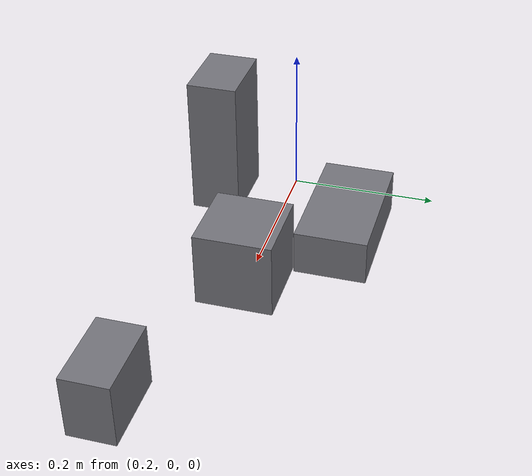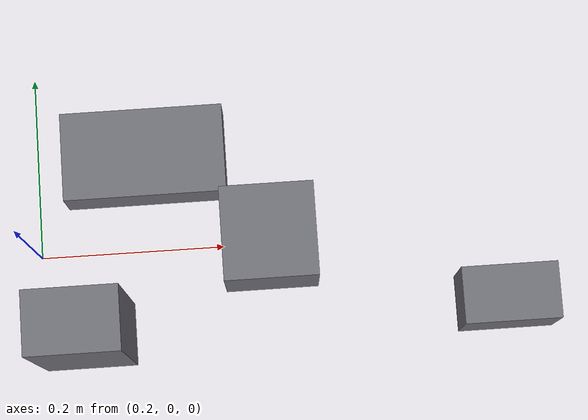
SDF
<?xml version="1.0"?>
<sdf version="1.7">
  <model name="oim_ycb_clutter"><static>true</static>
    <link name="obs_box">
      <pose>0.44999999999999996 0.0 0.05 0 0 0</pose>
      <collision name="collision"><geometry><box><size>0.1 0.1 0.1</size></box></geometry>
        <surface><friction><ode><mu>0.8</mu><mu2>0.8</mu2></ode></friction></surface>
      </collision>
      <visual name="visual"><geometry><box><size>0.1 0.1 0.1</size></box></geometry>
        <material><diffuse>0.45 0.45 0.48 1</diffuse></material></visual>
    </link>
    <link name="domino_sugar">
      <pose>0.32 0.1 0.03 0 0 0</pose>
      <collision name="collision"><geometry><box><size>0.175 0.095 0.06</size></box></geometry>
        <surface><friction><ode><mu>0.8</mu><mu2>0.8</mu2></ode></friction></surface>
      </collision>
      <visual name="visual"><geometry><box><size>0.175 0.095 0.06</size></box></geometry>
        <material><diffuse>0.45 0.45 0.48 1</diffuse></material></visual>
    </link>
    <link name="spam_can">
      <pose>0.7 -0.08 0.0418 0 0 0</pose>
      <collision name="collision"><geometry><box><size>0.1021 0.0601 0.0835</size></box></geometry>
        <surface><friction><ode><mu>0.8</mu><mu2>0.8</mu2></ode></friction></surface>
      </collision>
      <visual name="visual"><geometry><box><size>0.1021 0.0601 0.0835</size></box></geometry>
        <material><diffuse>0.45 0.45 0.48 1</diffuse></material></visual>
    </link>
    <link name="mustard_bottle">
      <pose>0.25 -0.09 0.0957 0 0 0</pose>
      <collision name="collision"><geometry><box><size>0.0972 0.0666 0.1913</size></box></geometry>
        <surface><friction><ode><mu>0.8</mu><mu2>0.8</mu2></ode></friction></surface>
      </collision>
      <visual name="visual"><geometry><box><size>0.0972 0.0666 0.1913</size></box></geometry>
        <material><diffuse>0.45 0.45 0.48 1</diffuse></material></visual>
    </link>
  </model>
</sdf>
